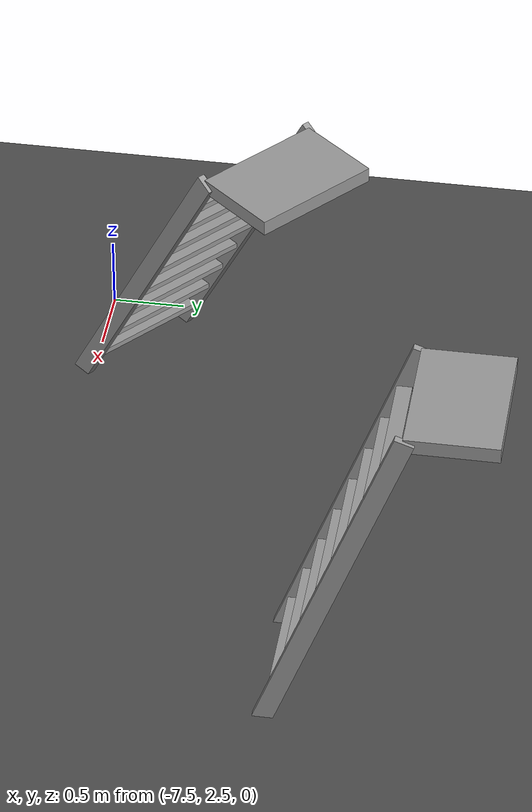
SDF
<sdf version="1.7">
 <world name="default">
  <model name="ground_plane">
   <static>1</static>
   <link name="link">
    <collision name="collision">
     <geometry><plane><normal>0 0 1</normal><size>100 100</size></plane></geometry>
     <surface>
      <contact><collide_bitmask>65535</collide_bitmask></contact>
      <friction><ode><mu>100</mu><mu2>50</mu2></ode></friction>
     </surface>
    </collision>
    <visual name="visual">
     <cast_shadows>0</cast_shadows>
     <geometry><plane><normal>0 0 1</normal><size>100 100</size></plane></geometry>
     <material>
      <script><uri>file://media/materials/scripts/gazebo.material</uri><name>Gazebo/Grey</name></script>
     </material>
    </visual>
   </link>
  </model>
  <model name="asphalt_plane">
   <static>1</static>
   <link name="link">
    <collision name="collision"><geometry><box><size>20 20 0.1</size></box></geometry></collision>
    <visual name="visual">
     <cast_shadows>0</cast_shadows>
     <geometry><box><size>20 20 0.1</size></box></geometry>
     <material>
      <script>
       <uri>model://asphalt_plane/materials/scripts</uri>
       <uri>model://asphalt_plane/materials/textures</uri>
       <name>vrc/asphalt</name>
      </script>
     </material>
    </visual>
   </link>
   <pose>-0.371797 0.087544 0 0 -0 0</pose>
  </model>
  <model name="ladder_60deg_0rails">
   <static>1</static>
   <link name="step0">
    <pose>0 0.15396 0.266667 0 -0 0</pose>
    <inertial>
     <mass>9.75482</mass>
     <inertia>
      <ixx>0.00957124</ixx>
      <iyy>0.65963</iyy>
      <izz>0.666842</izz>
      <ixy>0</ixy>
      <ixz>0</ixz>
      <iyz>0</iyz>
     </inertia>
    </inertial>
    <collision name="collision"><geometry><box><size>0.9 0.1016 0.0381</size></box></geometry></collision>
    <visual name="visual">
     <geometry><box><size>0.9 0.1016 0.0381</size></box></geometry>
     <material>
      <script><uri>file://media/materials/scripts/gazebo.material</uri><name>Gazebo/Grey</name></script>
     </material>
    </visual>
   </link>
   <link name="step1">
    <pose>0 0.30792 0.533333 0 -0 0</pose>
    <inertial>
     <mass>9.75482</mass>
     <inertia>
      <ixx>0.00957124</ixx>
      <iyy>0.65963</iyy>
      <izz>0.666842</izz>
      <ixy>0</ixy>
      <ixz>0</ixz>
      <iyz>0</iyz>
     </inertia>
    </inertial>
    <collision name="collision"><geometry><box><size>0.9 0.1016 0.0381</size></box></geometry></collision>
    <visual name="visual">
     <geometry><box><size>0.9 0.1016 0.0381</size></box></geometry>
     <material>
      <script><uri>file://media/materials/scripts/gazebo.material</uri><name>Gazebo/Grey</name></script>
     </material>
    </visual>
   </link>
   <link name="step2">
    <pose>0 0.46188 0.8 0 -0 0</pose>
    <inertial>
     <mass>9.75482</mass>
     <inertia>
      <ixx>0.00957124</ixx>
      <iyy>0.65963</iyy>
      <izz>0.666842</izz>
      <ixy>0</ixy>
      <ixz>0</ixz>
      <iyz>0</iyz>
     </inertia>
    </inertial>
    <collision name="collision"><geometry><box><size>0.9 0.1016 0.0381</size></box></geometry></collision>
    <visual name="visual">
     <geometry><box><size>0.9 0.1016 0.0381</size></box></geometry>
     <material>
      <script><uri>file://media/materials/scripts/gazebo.material</uri><name>Gazebo/Grey</name></script>
     </material>
    </visual>
   </link>
   <link name="step3">
    <pose>0 0.61584 1.06667 0 -0 0</pose>
    <inertial>
     <mass>9.75482</mass>
     <inertia>
      <ixx>0.00957124</ixx>
      <iyy>0.65963</iyy>
      <izz>0.666842</izz>
      <ixy>0</ixy>
      <ixz>0</ixz>
      <iyz>0</iyz>
     </inertia>
    </inertial>
    <collision name="collision"><geometry><box><size>0.9 0.1016 0.0381</size></box></geometry></collision>
    <visual name="visual">
     <geometry><box><size>0.9 0.1016 0.0381</size></box></geometry>
     <material>
      <script><uri>file://media/materials/scripts/gazebo.material</uri><name>Gazebo/Grey</name></script>
     </material>
    </visual>
   </link>
   <link name="step4">
    <pose>0 0.7698 1.33333 0 -0 0</pose>
    <inertial>
     <mass>9.75482</mass>
     <inertia>
      <ixx>0.00957124</ixx>
      <iyy>0.65963</iyy>
      <izz>0.666842</izz>
      <ixy>0</ixy>
      <ixz>0</ixz>
      <iyz>0</iyz>
     </inertia>
    </inertial>
    <collision name="collision"><geometry><box><size>0.9 0.1016 0.0381</size></box></geometry></collision>
    <visual name="visual">
     <geometry><box><size>0.9 0.1016 0.0381</size></box></geometry>
     <material>
      <script><uri>file://media/materials/scripts/gazebo.material</uri><name>Gazebo/Grey</name></script>
     </material>
    </visual>
   </link>
   <link name="step5">
    <pose>0 0.92376 1.6 0 -0 0</pose>
    <inertial>
     <mass>9.75482</mass>
     <inertia>
      <ixx>0.00957124</ixx>
      <iyy>0.65963</iyy>
      <izz>0.666842</izz>
      <ixy>0</ixy>
      <ixz>0</ixz>
      <iyz>0</iyz>
     </inertia>
    </inertial>
    <collision name="collision"><geometry><box><size>0.9 0.1016 0.0381</size></box></geometry></collision>
    <visual name="visual">
     <geometry><box><size>0.9 0.1016 0.0381</size></box></geometry>
     <material>
      <script><uri>file://media/materials/scripts/gazebo.material</uri><name>Gazebo/Grey</name></script>
     </material>
    </visual>
   </link>
   <link name="step6">
    <pose>0 1.07772 1.86667 0 -0 0</pose>
    <inertial>
     <mass>9.75482</mass>
     <inertia>
      <ixx>0.00957124</ixx>
      <iyy>0.65963</iyy>
      <izz>0.666842</izz>
      <ixy>0</ixy>
      <ixz>0</ixz>
      <iyz>0</iyz>
     </inertia>
    </inertial>
    <collision name="collision"><geometry><box><size>0.9 0.1016 0.0381</size></box></geometry></collision>
    <visual name="visual">
     <geometry><box><size>0.9 0.1016 0.0381</size></box></geometry>
     <material>
      <script><uri>file://media/materials/scripts/gazebo.material</uri><name>Gazebo/Grey</name></script>
     </material>
    </visual>
   </link>
   <link name="step7">
    <pose>0 1.23168 2.13333 0 -0 0</pose>
    <inertial>
     <mass>9.75482</mass>
     <inertia>
      <ixx>0.00957124</ixx>
      <iyy>0.65963</iyy>
      <izz>0.666842</izz>
      <ixy>0</ixy>
      <ixz>0</ixz>
      <iyz>0</iyz>
     </inertia>
    </inertial>
    <collision name="collision"><geometry><box><size>0.9 0.1016 0.0381</size></box></geometry></collision>
    <visual name="visual">
     <geometry><box><size>0.9 0.1016 0.0381</size></box></geometry>
     <material>
      <script><uri>file://media/materials/scripts/gazebo.material</uri><name>Gazebo/Grey</name></script>
     </material>
    </visual>
   </link>
   <link name="landing">
    <pose>0 1.68564 2.4 0 -0 0</pose>
    <inertial>
     <mass>57.6072</mass>
     <inertia><ixx>1.73518</ixx><iyy>3.89545</iyy><izz>5.6167</izz><ixy>0</ixy><ixz>0</ixz><iyz>0</iyz></inertia>
    </inertial>
    <collision name="collision"><geometry><box><size>0.9 0.6 0.1016</size></box></geometry></collision>
    <visual name="visual">
     <geometry><box><size>0.9 0.6 0.1016</size></box></geometry>
     <material>
      <script><uri>file://media/materials/scripts/gazebo.material</uri><name>Gazebo/Grey</name></script>
     </material>
    </visual>
   </link>
   <link name="left_side_wall">
    <pose>-0.45 0.69282 1.2 1.0472 -0 0</pose>
    <collision name="collision"><geometry><box><size>0.0508 2.85128 0.13</size></box></geometry></collision>
    <visual name="visual">
     <geometry><box><size>0.0508 2.85128 0.13</size></box></geometry>
     <material>
      <script><uri>file://media/materials/scripts/gazebo.material</uri><name>Gazebo/Grey</name></script>
     </material>
    </visual>
   </link>
   <link name="right_side_wall">
    <pose>0.45 0.69282 1.2 1.0472 -0 0</pose>
    <collision name="collision"><geometry><box><size>0.0508 2.85128 0.13</size></box></geometry></collision>
    <visual name="visual">
     <geometry><box><size>0.0508 2.85128 0.13</size></box></geometry>
     <material>
      <script><uri>file://media/materials/scripts/gazebo.material</uri><name>Gazebo/Grey</name></script>
     </material>
    </visual>
   </link>
   <pose>-7.00011 2.71219 0 0 0 -0.707096</pose>
  </model>
  <model name="ladder_70deg_0rails">
   <static>1</static>
   <link name="step0">
    <pose>0 0.097059 0.266667 0 -0 0</pose>
    <inertial>
     <mass>9.75482</mass>
     <inertia>
      <ixx>0.00957124</ixx>
      <iyy>0.65963</iyy>
      <izz>0.666842</izz>
      <ixy>0</ixy>
      <ixz>0</ixz>
      <iyz>0</iyz>
     </inertia>
    </inertial>
    <collision name="collision"><geometry><box><size>0.9 0.1016 0.0381</size></box></geometry></collision>
    <visual name="visual">
     <geometry><box><size>0.9 0.1016 0.0381</size></box></geometry>
     <material>
      <script><uri>file://media/materials/scripts/gazebo.material</uri><name>Gazebo/Grey</name></script>
     </material>
    </visual>
   </link>
   <link name="step1">
    <pose>0 0.194117 0.533333 0 -0 0</pose>
    <inertial>
     <mass>9.75482</mass>
     <inertia>
      <ixx>0.00957124</ixx>
      <iyy>0.65963</iyy>
      <izz>0.666842</izz>
      <ixy>0</ixy>
      <ixz>0</ixz>
      <iyz>0</iyz>
     </inertia>
    </inertial>
    <collision name="collision"><geometry><box><size>0.9 0.1016 0.0381</size></box></geometry></collision>
    <visual name="visual">
     <geometry><box><size>0.9 0.1016 0.0381</size></box></geometry>
     <material>
      <script><uri>file://media/materials/scripts/gazebo.material</uri><name>Gazebo/Grey</name></script>
     </material>
    </visual>
   </link>
   <link name="step2">
    <pose>0 0.291176 0.8 0 -0 0</pose>
    <inertial>
     <mass>9.75482</mass>
     <inertia>
      <ixx>0.00957124</ixx>
      <iyy>0.65963</iyy>
      <izz>0.666842</izz>
      <ixy>0</ixy>
      <ixz>0</ixz>
      <iyz>0</iyz>
     </inertia>
    </inertial>
    <collision name="collision"><geometry><box><size>0.9 0.1016 0.0381</size></box></geometry></collision>
    <visual name="visual">
     <geometry><box><size>0.9 0.1016 0.0381</size></box></geometry>
     <material>
      <script><uri>file://media/materials/scripts/gazebo.material</uri><name>Gazebo/Grey</name></script>
     </material>
    </visual>
   </link>
   <link name="step3">
    <pose>0 0.388235 1.06667 0 -0 0</pose>
    <inertial>
     <mass>9.75482</mass>
     <inertia>
      <ixx>0.00957124</ixx>
      <iyy>0.65963</iyy>
      <izz>0.666842</izz>
      <ixy>0</ixy>
      <ixz>0</ixz>
      <iyz>0</iyz>
     </inertia>
    </inertial>
    <collision name="collision"><geometry><box><size>0.9 0.1016 0.0381</size></box></geometry></collision>
    <visual name="visual">
     <geometry><box><size>0.9 0.1016 0.0381</size></box></geometry>
     <material>
      <script><uri>file://media/materials/scripts/gazebo.material</uri><name>Gazebo/Grey</name></script>
     </material>
    </visual>
   </link>
   <link name="step4">
    <pose>0 0.485294 1.33333 0 -0 0</pose>
    <inertial>
     <mass>9.75482</mass>
     <inertia>
      <ixx>0.00957124</ixx>
      <iyy>0.65963</iyy>
      <izz>0.666842</izz>
      <ixy>0</ixy>
      <ixz>0</ixz>
      <iyz>0</iyz>
     </inertia>
    </inertial>
    <collision name="collision"><geometry><box><size>0.9 0.1016 0.0381</size></box></geometry></collision>
    <visual name="visual">
     <geometry><box><size>0.9 0.1016 0.0381</size></box></geometry>
     <material>
      <script><uri>file://media/materials/scripts/gazebo.material</uri><name>Gazebo/Grey</name></script>
     </material>
    </visual>
   </link>
   <link name="step5">
    <pose>0 0.582352 1.6 0 -0 0</pose>
    <inertial>
     <mass>9.75482</mass>
     <inertia>
      <ixx>0.00957124</ixx>
      <iyy>0.65963</iyy>
      <izz>0.666842</izz>
      <ixy>0</ixy>
      <ixz>0</ixz>
      <iyz>0</iyz>
     </inertia>
    </inertial>
    <collision name="collision"><geometry><box><size>0.9 0.1016 0.0381</size></box></geometry></collision>
    <visual name="visual">
     <geometry><box><size>0.9 0.1016 0.0381</size></box></geometry>
     <material>
      <script><uri>file://media/materials/scripts/gazebo.material</uri><name>Gazebo/Grey</name></script>
     </material>
    </visual>
   </link>
   <link name="step6">
    <pose>0 0.679411 1.86667 0 -0 0</pose>
    <inertial>
     <mass>9.75482</mass>
     <inertia>
      <ixx>0.00957124</ixx>
      <iyy>0.65963</iyy>
      <izz>0.666842</izz>
      <ixy>0</ixy>
      <ixz>0</ixz>
      <iyz>0</iyz>
     </inertia>
    </inertial>
    <collision name="collision"><geometry><box><size>0.9 0.1016 0.0381</size></box></geometry></collision>
    <visual name="visual">
     <geometry><box><size>0.9 0.1016 0.0381</size></box></geometry>
     <material>
      <script><uri>file://media/materials/scripts/gazebo.material</uri><name>Gazebo/Grey</name></script>
     </material>
    </visual>
   </link>
   <link name="step7">
    <pose>0 0.77647 2.13333 0 -0 0</pose>
    <inertial>
     <mass>9.75482</mass>
     <inertia>
      <ixx>0.00957124</ixx>
      <iyy>0.65963</iyy>
      <izz>0.666842</izz>
      <ixy>0</ixy>
      <ixz>0</ixz>
      <iyz>0</iyz>
     </inertia>
    </inertial>
    <collision name="collision"><geometry><box><size>0.9 0.1016 0.0381</size></box></geometry></collision>
    <visual name="visual">
     <geometry><box><size>0.9 0.1016 0.0381</size></box></geometry>
     <material>
      <script><uri>file://media/materials/scripts/gazebo.material</uri><name>Gazebo/Grey</name></script>
     </material>
    </visual>
   </link>
   <link name="landing">
    <pose>0 1.17353 2.4 0 -0 0</pose>
    <inertial>
     <mass>57.6072</mass>
     <inertia><ixx>1.73518</ixx><iyy>3.89545</iyy><izz>5.6167</izz><ixy>0</ixy><ixz>0</ixz><iyz>0</iyz></inertia>
    </inertial>
    <collision name="collision"><geometry><box><size>0.9 0.6 0.1016</size></box></geometry></collision>
    <visual name="visual">
     <geometry><box><size>0.9 0.6 0.1016</size></box></geometry>
     <material>
      <script><uri>file://media/materials/scripts/gazebo.material</uri><name>Gazebo/Grey</name></script>
     </material>
    </visual>
   </link>
   <link name="left_side_wall">
    <pose>-0.45 0.436764 1.2 1.22173 -0 0</pose>
    <collision name="collision"><geometry><box><size>0.0508 2.63403 0.13</size></box></geometry></collision>
    <visual name="visual">
     <geometry><box><size>0.0508 2.63403 0.13</size></box></geometry>
     <material>
      <script><uri>file://media/materials/scripts/gazebo.material</uri><name>Gazebo/Grey</name></script>
     </material>
    </visual>
   </link>
   <link name="right_side_wall">
    <pose>0.45 0.436764 1.2 1.22173 -0 0</pose>
    <collision name="collision"><geometry><box><size>0.0508 2.63403 0.13</size></box></geometry></collision>
    <visual name="visual">
     <geometry><box><size>0.0508 2.63403 0.13</size></box></geometry>
     <material>
      <script><uri>file://media/materials/scripts/gazebo.material</uri><name>Gazebo/Grey</name></script>
     </material>
    </visual>
   </link>
   <pose>-3.79544 4.21726 0 0 -0 0</pose>
  </model>
 </world>
</sdf>
